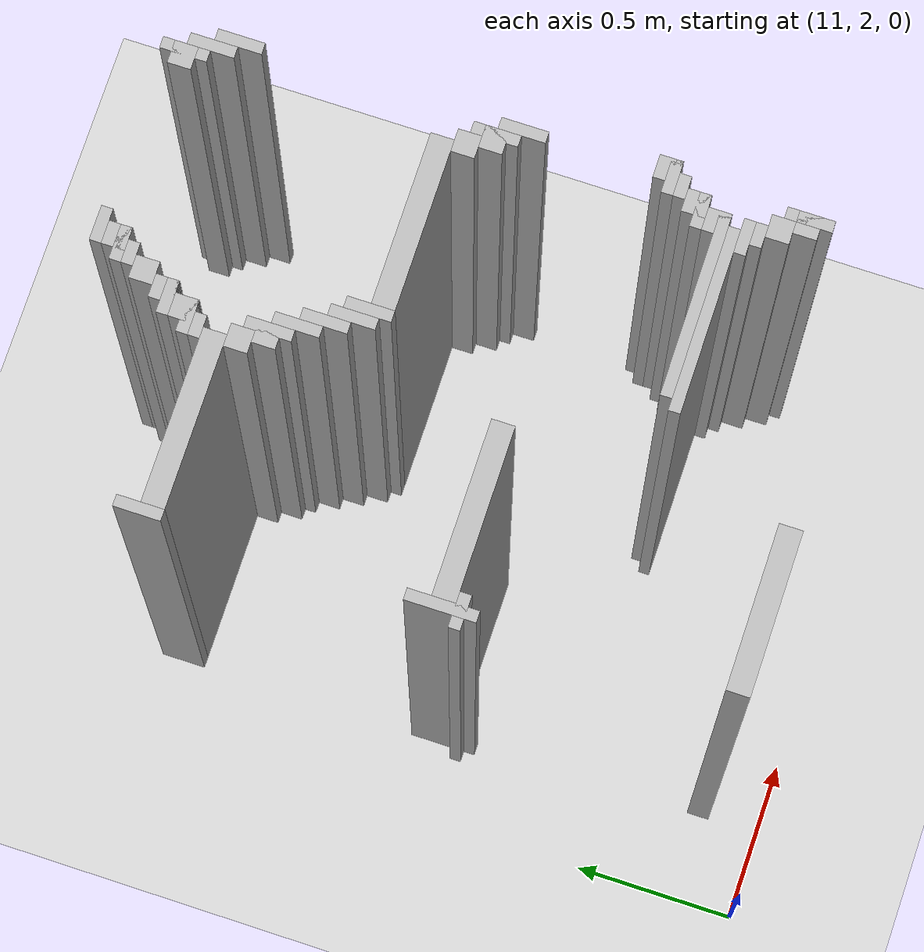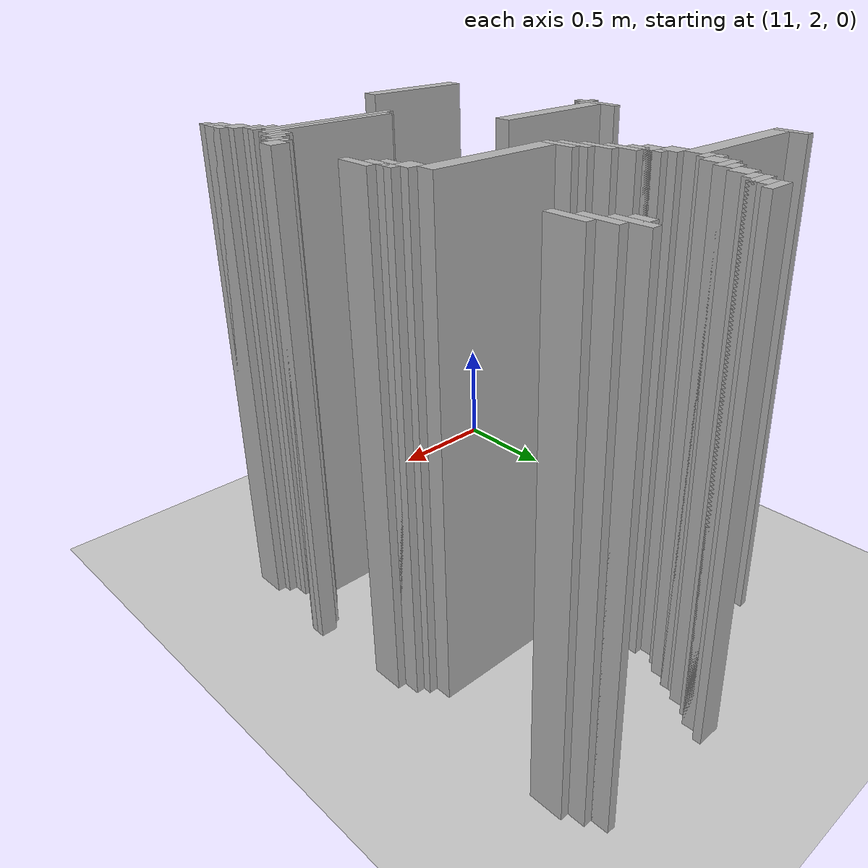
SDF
<sdf version="1.6">
 <world name="slam_world">
  <model name="ground_plane">
   <static>true</static>
   <link name="link">
    <collision name="collision">
     <geometry><plane><normal>0 0 1</normal><size>100 100</size></plane></geometry>
    </collision>
    <visual name="visual">
     <geometry><plane><normal>0 0 1</normal><size>100 100</size></plane></geometry>
     <material>
      <ambient>0.8 0.8 0.8 1</ambient>
      <diffuse>0.8 0.8 0.8 1</diffuse>
      <specular>0.8 0.8 0.8 1</specular>
     </material>
    </visual>
   </link>
  </model>
  <model name="wall_4308">
   <static>true</static>
   <pose>11.989559164733178 4.263341067285383 1.0 0 0 0</pose>
   <link name="link">
    <collision name="collision">
     <geometry><box><size>0.10440835266821345 0.03480278422273782 2.0</size></box></geometry>
    </collision>
    <visual name="visual">
     <geometry><box><size>0.10440835266821345 0.03480278422273782 2.0</size></box></geometry>
     <material><ambient>0.5 0.5 0.5 1</ambient><diffuse>0.7 0.7 0.7 1</diffuse></material>
    </visual>
   </link>
  </model>
  <model name="wall_4309">
   <static>true</static>
   <pose>12.546403712296984 4.211136890951276 1.0 0 0 0</pose>
   <link name="link">
    <collision name="collision">
     <geometry><box><size>0.03480278422273782 0.13921113689095127 2.0</size></box></geometry>
    </collision>
    <visual name="visual">
     <geometry><box><size>0.03480278422273782 0.13921113689095127 2.0</size></box></geometry>
     <material><ambient>0.5 0.5 0.5 1</ambient><diffuse>0.7 0.7 0.7 1</diffuse></material>
    </visual>
   </link>
  </model>
  <model name="wall_4323">
   <static>true</static>
   <pose>11.97215777262181 4.211136890951276 1.0 0 0 0</pose>
   <link name="link">
    <collision name="collision">
     <geometry><box><size>0.06960556844547564 0.06960556844547564 2.0</size></box></geometry>
    </collision>
    <visual name="visual">
     <geometry><box><size>0.06960556844547564 0.06960556844547564 2.0</size></box></geometry>
     <material><ambient>0.5 0.5 0.5 1</ambient><diffuse>0.7 0.7 0.7 1</diffuse></material>
    </visual>
   </link>
  </model>
  <model name="wall_4324">
   <static>true</static>
   <pose>12.529002320185615 4.211136890951276 1.0 0 0 0</pose>
   <link name="link">
    <collision name="collision">
     <geometry><box><size>0.06960556844547564 0.06960556844547564 2.0</size></box></geometry>
    </collision>
    <visual name="visual">
     <geometry><box><size>0.06960556844547564 0.06960556844547564 2.0</size></box></geometry>
     <material><ambient>0.5 0.5 0.5 1</ambient><diffuse>0.7 0.7 0.7 1</diffuse></material>
    </visual>
   </link>
  </model>
  <model name="wall_4338">
   <static>true</static>
   <pose>11.95475638051044 4.193735498839907 1.0 0 0 0</pose>
   <link name="link">
    <collision name="collision">
     <geometry><box><size>0.10440835266821345 0.03480278422273782 2.0</size></box></geometry>
    </collision>
    <visual name="visual">
     <geometry><box><size>0.10440835266821345 0.03480278422273782 2.0</size></box></geometry>
     <material><ambient>0.5 0.5 0.5 1</ambient><diffuse>0.7 0.7 0.7 1</diffuse></material>
    </visual>
   </link>
  </model>
  <model name="wall_4339">
   <static>true</static>
   <pose>12.581206496519721 4.1415313225058 1.0 0 0 0</pose>
   <link name="link">
    <collision name="collision">
     <geometry><box><size>0.03480278422273782 0.13921113689095127 2.0</size></box></geometry>
    </collision>
    <visual name="visual">
     <geometry><box><size>0.03480278422273782 0.13921113689095127 2.0</size></box></geometry>
     <material><ambient>0.5 0.5 0.5 1</ambient><diffuse>0.7 0.7 0.7 1</diffuse></material>
    </visual>
   </link>
  </model>
  <model name="wall_4348">
   <static>true</static>
   <pose>11.937354988399072 4.158932714617169 1.0 0 0 0</pose>
   <link name="link">
    <collision name="collision">
     <geometry><box><size>0.06960556844547564 0.03480278422273782 2.0</size></box></geometry>
    </collision>
    <visual name="visual">
     <geometry><box><size>0.06960556844547564 0.03480278422273782 2.0</size></box></geometry>
     <material><ambient>0.5 0.5 0.5 1</ambient><diffuse>0.7 0.7 0.7 1</diffuse></material>
    </visual>
   </link>
  </model>
  <model name="wall_4362">
   <static>true</static>
   <pose>11.902552204176333 4.106728538283062 1.0 0 0 0</pose>
   <link name="link">
    <collision name="collision">
     <geometry><box><size>0.06960556844547564 0.06960556844547564 2.0</size></box></geometry>
    </collision>
    <visual name="visual">
     <geometry><box><size>0.06960556844547564 0.06960556844547564 2.0</size></box></geometry>
     <material><ambient>0.5 0.5 0.5 1</ambient><diffuse>0.7 0.7 0.7 1</diffuse></material>
    </visual>
   </link>
  </model>
  <model name="wall_4363">
   <static>true</static>
   <pose>12.616009280742459 4.071925754060325 1.0 0 0 0</pose>
   <link name="link">
    <collision name="collision">
     <geometry><box><size>0.03480278422273782 0.13921113689095127 2.0</size></box></geometry>
    </collision>
    <visual name="visual">
     <geometry><box><size>0.03480278422273782 0.13921113689095127 2.0</size></box></geometry>
     <material><ambient>0.5 0.5 0.5 1</ambient><diffuse>0.7 0.7 0.7 1</diffuse></material>
    </visual>
   </link>
  </model>
  <model name="wall_4377">
   <static>true</static>
   <pose>11.867749419953595 4.037122969837587 1.0 0 0 0</pose>
   <link name="link">
    <collision name="collision">
     <geometry><box><size>0.06960556844547564 0.06960556844547564 2.0</size></box></geometry>
    </collision>
    <visual name="visual">
     <geometry><box><size>0.06960556844547564 0.06960556844547564 2.0</size></box></geometry>
     <material><ambient>0.5 0.5 0.5 1</ambient><diffuse>0.7 0.7 0.7 1</diffuse></material>
    </visual>
   </link>
  </model>
  <model name="wall_4392">
   <static>true</static>
   <pose>11.850348027842227 4.019721577726218 1.0 0 0 0</pose>
   <link name="link">
    <collision name="collision">
     <geometry><box><size>0.10440835266821345 0.03480278422273782 2.0</size></box></geometry>
    </collision>
    <visual name="visual">
     <geometry><box><size>0.10440835266821345 0.03480278422273782 2.0</size></box></geometry>
     <material><ambient>0.5 0.5 0.5 1</ambient><diffuse>0.7 0.7 0.7 1</diffuse></material>
    </visual>
   </link>
  </model>
  <model name="wall_4401">
   <static>true</static>
   <pose>11.832946635730858 3.967517401392111 1.0 0 0 0</pose>
   <link name="link">
    <collision name="collision">
     <geometry><box><size>0.06960556844547564 0.06960556844547564 2.0</size></box></geometry>
    </collision>
    <visual name="visual">
     <geometry><box><size>0.06960556844547564 0.06960556844547564 2.0</size></box></geometry>
     <material><ambient>0.5 0.5 0.5 1</ambient><diffuse>0.7 0.7 0.7 1</diffuse></material>
    </visual>
   </link>
  </model>
  <model name="wall_4414">
   <static>true</static>
   <pose>11.258700696055683 3.897911832946636 1.0 0 0 0</pose>
   <link name="link">
    <collision name="collision">
     <geometry><box><size>0.03480278422273782 0.13921113689095127 2.0</size></box></geometry>
    </collision>
    <visual name="visual">
     <geometry><box><size>0.03480278422273782 0.13921113689095127 2.0</size></box></geometry>
     <material><ambient>0.5 0.5 0.5 1</ambient><diffuse>0.7 0.7 0.7 1</diffuse></material>
    </visual>
   </link>
  </model>
  <model name="wall_4415">
   <static>true</static>
   <pose>11.81554524361949 3.9501160092807424 1.0 0 0 0</pose>
   <link name="link">
    <collision name="collision">
     <geometry><box><size>0.10440835266821345 0.03480278422273782 2.0</size></box></geometry>
    </collision>
    <visual name="visual">
     <geometry><box><size>0.10440835266821345 0.03480278422273782 2.0</size></box></geometry>
     <material><ambient>0.5 0.5 0.5 1</ambient><diffuse>0.7 0.7 0.7 1</diffuse></material>
    </visual>
   </link>
  </model>
  <model name="wall_4424">
   <static>true</static>
   <pose>11.79814385150812 3.9153132250580045 1.0 0 0 0</pose>
   <link name="link">
    <collision name="collision">
     <geometry><box><size>0.06960556844547564 0.03480278422273782 2.0</size></box></geometry>
    </collision>
    <visual name="visual">
     <geometry><box><size>0.06960556844547564 0.03480278422273782 2.0</size></box></geometry>
     <material><ambient>0.5 0.5 0.5 1</ambient><diffuse>0.7 0.7 0.7 1</diffuse></material>
    </visual>
   </link>
  </model>
  <model name="wall_4439">
   <static>true</static>
   <pose>11.537122969837586 3.863109048723898 1.0 0 0 0</pose>
   <link name="link">
    <collision name="collision">
     <geometry><box><size>0.5220417633410672 0.06960556844547564 2.0</size></box></geometry>
    </collision>
    <visual name="visual">
     <geometry><box><size>0.5220417633410672 0.06960556844547564 2.0</size></box></geometry>
     <material><ambient>0.5 0.5 0.5 1</ambient><diffuse>0.7 0.7 0.7 1</diffuse></material>
    </visual>
   </link>
  </model>
  <model name="wall_4456">
   <static>true</static>
   <pose>11.79814385150812 3.793503480278422 1.0 0 0 0</pose>
   <link name="link">
    <collision name="collision">
     <geometry><box><size>0.06960556844547564 0.06960556844547564 2.0</size></box></geometry>
    </collision>
    <visual name="visual">
     <geometry><box><size>0.06960556844547564 0.06960556844547564 2.0</size></box></geometry>
     <material><ambient>0.5 0.5 0.5 1</ambient><diffuse>0.7 0.7 0.7 1</diffuse></material>
    </visual>
   </link>
  </model>
  <model name="wall_4473">
   <static>true</static>
   <pose>11.850348027842227 3.7238979118329465 1.0 0 0 0</pose>
   <link name="link">
    <collision name="collision">
     <geometry><box><size>0.03480278422273782 0.13921113689095127 2.0</size></box></geometry>
    </collision>
    <visual name="visual">
     <geometry><box><size>0.03480278422273782 0.13921113689095127 2.0</size></box></geometry>
     <material><ambient>0.5 0.5 0.5 1</ambient><diffuse>0.7 0.7 0.7 1</diffuse></material>
    </visual>
   </link>
  </model>
  <model name="wall_4490">
   <static>true</static>
   <pose>11.832946635730858 3.7238979118329465 1.0 0 0 0</pose>
   <link name="link">
    <collision name="collision">
     <geometry><box><size>0.06960556844547564 0.06960556844547564 2.0</size></box></geometry>
    </collision>
    <visual name="visual">
     <geometry><box><size>0.06960556844547564 0.06960556844547564 2.0</size></box></geometry>
     <material><ambient>0.5 0.5 0.5 1</ambient><diffuse>0.7 0.7 0.7 1</diffuse></material>
    </visual>
   </link>
  </model>
  <model name="wall_4507">
   <static>true</static>
   <pose>11.885150812064964 3.6542923433874708 1.0 0 0 0</pose>
   <link name="link">
    <collision name="collision">
     <geometry><box><size>0.03480278422273782 0.13921113689095127 2.0</size></box></geometry>
    </collision>
    <visual name="visual">
     <geometry><box><size>0.03480278422273782 0.13921113689095127 2.0</size></box></geometry>
     <material><ambient>0.5 0.5 0.5 1</ambient><diffuse>0.7 0.7 0.7 1</diffuse></material>
    </visual>
   </link>
  </model>
  <model name="wall_4531">
   <static>true</static>
   <pose>11.919953596287703 3.584686774941995 1.0 0 0 0</pose>
   <link name="link">
    <collision name="collision">
     <geometry><box><size>0.03480278422273782 0.13921113689095127 2.0</size></box></geometry>
    </collision>
    <visual name="visual">
     <geometry><box><size>0.03480278422273782 0.13921113689095127 2.0</size></box></geometry>
     <material><ambient>0.5 0.5 0.5 1</ambient><diffuse>0.7 0.7 0.7 1</diffuse></material>
    </visual>
   </link>
  </model>
  <model name="wall_4555">
   <static>true</static>
   <pose>11.95475638051044 3.51508120649652 1.0 0 0 0</pose>
   <link name="link">
    <collision name="collision">
     <geometry><box><size>0.03480278422273782 0.13921113689095127 2.0</size></box></geometry>
    </collision>
    <visual name="visual">
     <geometry><box><size>0.03480278422273782 0.13921113689095127 2.0</size></box></geometry>
     <material><ambient>0.5 0.5 0.5 1</ambient><diffuse>0.7 0.7 0.7 1</diffuse></material>
    </visual>
   </link>
  </model>
  <model name="wall_4572">
   <static>true</static>
   <pose>11.989559164733178 3.480278422273782 1.0 0 0 0</pose>
   <link name="link">
    <collision name="collision">
     <geometry><box><size>0.03480278422273782 0.13921113689095127 2.0</size></box></geometry>
    </collision>
    <visual name="visual">
     <geometry><box><size>0.03480278422273782 0.13921113689095127 2.0</size></box></geometry>
     <material><ambient>0.5 0.5 0.5 1</ambient><diffuse>0.7 0.7 0.7 1</diffuse></material>
    </visual>
   </link>
  </model>
  <model name="wall_4595">
   <static>true</static>
   <pose>12.267981438515081 3.445475638051044 1.0 0 0 0</pose>
   <link name="link">
    <collision name="collision">
     <geometry><box><size>0.5220417633410672 0.06960556844547564 2.0</size></box></geometry>
    </collision>
    <visual name="visual">
     <geometry><box><size>0.5220417633410672 0.06960556844547564 2.0</size></box></geometry>
     <material><ambient>0.5 0.5 0.5 1</ambient><diffuse>0.7 0.7 0.7 1</diffuse></material>
    </visual>
   </link>
  </model>
  <model name="wall_4615">
   <static>true</static>
   <pose>12.529002320185615 3.3758700696055683 1.0 0 0 0</pose>
   <link name="link">
    <collision name="collision">
     <geometry><box><size>0.06960556844547564 0.06960556844547564 2.0</size></box></geometry>
    </collision>
    <visual name="visual">
     <geometry><box><size>0.06960556844547564 0.06960556844547564 2.0</size></box></geometry>
     <material><ambient>0.5 0.5 0.5 1</ambient><diffuse>0.7 0.7 0.7 1</diffuse></material>
    </visual>
   </link>
  </model>
  <model name="wall_4628">
   <static>true</static>
   <pose>12.581206496519721 3.3062645011600926 1.0 0 0 0</pose>
   <link name="link">
    <collision name="collision">
     <geometry><box><size>0.03480278422273782 0.13921113689095127 2.0</size></box></geometry>
    </collision>
    <visual name="visual">
     <geometry><box><size>0.03480278422273782 0.13921113689095127 2.0</size></box></geometry>
     <material><ambient>0.5 0.5 0.5 1</ambient><diffuse>0.7 0.7 0.7 1</diffuse></material>
    </visual>
   </link>
  </model>
  <model name="wall_4641">
   <static>true</static>
   <pose>12.563805104408353 3.3062645011600926 1.0 0 0 0</pose>
   <link name="link">
    <collision name="collision">
     <geometry><box><size>0.06960556844547564 0.06960556844547564 2.0</size></box></geometry>
    </collision>
    <visual name="visual">
     <geometry><box><size>0.06960556844547564 0.06960556844547564 2.0</size></box></geometry>
     <material><ambient>0.5 0.5 0.5 1</ambient><diffuse>0.7 0.7 0.7 1</diffuse></material>
    </visual>
   </link>
  </model>
  <model name="wall_4654">
   <static>true</static>
   <pose>12.616009280742459 3.236658932714617 1.0 0 0 0</pose>
   <link name="link">
    <collision name="collision">
     <geometry><box><size>0.03480278422273782 0.13921113689095127 2.0</size></box></geometry>
    </collision>
    <visual name="visual">
     <geometry><box><size>0.03480278422273782 0.13921113689095127 2.0</size></box></geometry>
     <material><ambient>0.5 0.5 0.5 1</ambient><diffuse>0.7 0.7 0.7 1</diffuse></material>
    </visual>
   </link>
  </model>
  <model name="wall_4698">
   <static>true</static>
   <pose>11.258700696055683 3.02784222737819 1.0 0 0 0</pose>
   <link name="link">
    <collision name="collision">
     <geometry><box><size>0.03480278422273782 0.2088167053364269 2.0</size></box></geometry>
    </collision>
    <visual name="visual">
     <geometry><box><size>0.03480278422273782 0.2088167053364269 2.0</size></box></geometry>
     <material><ambient>0.5 0.5 0.5 1</ambient><diffuse>0.7 0.7 0.7 1</diffuse></material>
    </visual>
   </link>
  </model>
  <model name="wall_4721">
   <static>true</static>
   <pose>11.537122969837586 3.02784222737819 1.0 0 0 0</pose>
   <link name="link">
    <collision name="collision">
     <geometry><box><size>0.5220417633410672 0.06960556844547564 2.0</size></box></geometry>
    </collision>
    <visual name="visual">
     <geometry><box><size>0.5220417633410672 0.06960556844547564 2.0</size></box></geometry>
     <material><ambient>0.5 0.5 0.5 1</ambient><diffuse>0.7 0.7 0.7 1</diffuse></material>
    </visual>
   </link>
  </model>
  <model name="wall_4743">
   <static>true</static>
   <pose>11.258700696055683 2.975638051044083 1.0 0 0 0</pose>
   <link name="link">
    <collision name="collision">
     <geometry><box><size>0.10440835266821345 0.03480278422273782 2.0</size></box></geometry>
    </collision>
    <visual name="visual">
     <geometry><box><size>0.10440835266821345 0.03480278422273782 2.0</size></box></geometry>
     <material><ambient>0.5 0.5 0.5 1</ambient><diffuse>0.7 0.7 0.7 1</diffuse></material>
    </visual>
   </link>
  </model>
  <model name="wall_4795">
   <static>true</static>
   <pose>12.633410672853827 2.819025522041763 1.0 0 0 0</pose>
   <link name="link">
    <collision name="collision">
     <geometry><box><size>0.06960556844547564 0.06960556844547564 2.0</size></box></geometry>
    </collision>
    <visual name="visual">
     <geometry><box><size>0.06960556844547564 0.06960556844547564 2.0</size></box></geometry>
     <material><ambient>0.5 0.5 0.5 1</ambient><diffuse>0.7 0.7 0.7 1</diffuse></material>
    </visual>
   </link>
  </model>
  <model name="wall_4811">
   <static>true</static>
   <pose>12.616009280742459 2.8016241299303943 1.0 0 0 0</pose>
   <link name="link">
    <collision name="collision">
     <geometry><box><size>0.10440835266821345 0.03480278422273782 2.0</size></box></geometry>
    </collision>
    <visual name="visual">
     <geometry><box><size>0.10440835266821345 0.03480278422273782 2.0</size></box></geometry>
     <material><ambient>0.5 0.5 0.5 1</ambient><diffuse>0.7 0.7 0.7 1</diffuse></material>
    </visual>
   </link>
  </model>
  <model name="wall_4820">
   <static>true</static>
   <pose>12.59860788863109 2.7668213457076565 1.0 0 0 0</pose>
   <link name="link">
    <collision name="collision">
     <geometry><box><size>0.06960556844547564 0.03480278422273782 2.0</size></box></geometry>
    </collision>
    <visual name="visual">
     <geometry><box><size>0.06960556844547564 0.03480278422273782 2.0</size></box></geometry>
     <material><ambient>0.5 0.5 0.5 1</ambient><diffuse>0.7 0.7 0.7 1</diffuse></material>
    </visual>
   </link>
  </model>
  <model name="wall_4835">
   <static>true</static>
   <pose>12.563805104408353 2.71461716937355 1.0 0 0 0</pose>
   <link name="link">
    <collision name="collision">
     <geometry><box><size>0.06960556844547564 0.06960556844547564 2.0</size></box></geometry>
    </collision>
    <visual name="visual">
     <geometry><box><size>0.06960556844547564 0.06960556844547564 2.0</size></box></geometry>
     <material><ambient>0.5 0.5 0.5 1</ambient><diffuse>0.7 0.7 0.7 1</diffuse></material>
    </visual>
   </link>
  </model>
  <model name="wall_4851">
   <static>true</static>
   <pose>12.546403712296984 2.6972157772621808 1.0 0 0 0</pose>
   <link name="link">
    <collision name="collision">
     <geometry><box><size>0.10440835266821345 0.03480278422273782 2.0</size></box></geometry>
    </collision>
    <visual name="visual">
     <geometry><box><size>0.10440835266821345 0.03480278422273782 2.0</size></box></geometry>
     <material><ambient>0.5 0.5 0.5 1</ambient><diffuse>0.7 0.7 0.7 1</diffuse></material>
    </visual>
   </link>
  </model>
  <model name="wall_4860">
   <static>true</static>
   <pose>12.529002320185615 2.645011600928074 1.0 0 0 0</pose>
   <link name="link">
    <collision name="collision">
     <geometry><box><size>0.06960556844547564 0.06960556844547564 2.0</size></box></geometry>
    </collision>
    <visual name="visual">
     <geometry><box><size>0.06960556844547564 0.06960556844547564 2.0</size></box></geometry>
     <material><ambient>0.5 0.5 0.5 1</ambient><diffuse>0.7 0.7 0.7 1</diffuse></material>
    </visual>
   </link>
  </model>
  <model name="wall_4874">
   <static>true</static>
   <pose>12.28538283062645 2.627610208816705 1.0 0 0 0</pose>
   <link name="link">
    <collision name="collision">
     <geometry><box><size>0.5568445475638051 0.03480278422273782 2.0</size></box></geometry>
    </collision>
    <visual name="visual">
     <geometry><box><size>0.5568445475638051 0.03480278422273782 2.0</size></box></geometry>
     <material><ambient>0.5 0.5 0.5 1</ambient><diffuse>0.7 0.7 0.7 1</diffuse></material>
    </visual>
   </link>
  </model>
  <model name="wall_4885">
   <static>true</static>
   <pose>12.250580046403712 2.5928074245939676 1.0 0 0 0</pose>
   <link name="link">
    <collision name="collision">
     <geometry><box><size>0.5568445475638051 0.03480278422273782 2.0</size></box></geometry>
    </collision>
    <visual name="visual">
     <geometry><box><size>0.5568445475638051 0.03480278422273782 2.0</size></box></geometry>
     <material><ambient>0.5 0.5 0.5 1</ambient><diffuse>0.7 0.7 0.7 1</diffuse></material>
    </visual>
   </link>
  </model>
  <model name="wall_4897">
   <static>true</static>
   <pose>12.511600928074245 2.5580046403712298 1.0 0 0 0</pose>
   <link name="link">
    <collision name="collision">
     <geometry><box><size>0.10440835266821345 0.03480278422273782 2.0</size></box></geometry>
    </collision>
    <visual name="visual">
     <geometry><box><size>0.10440835266821345 0.03480278422273782 2.0</size></box></geometry>
     <material><ambient>0.5 0.5 0.5 1</ambient><diffuse>0.7 0.7 0.7 1</diffuse></material>
    </visual>
   </link>
  </model>
  <model name="wall_4905">
   <static>true</static>
   <pose>12.529002320185615 2.523201856148492 1.0 0 0 0</pose>
   <link name="link">
    <collision name="collision">
     <geometry><box><size>0.06960556844547564 0.03480278422273782 2.0</size></box></geometry>
    </collision>
    <visual name="visual">
     <geometry><box><size>0.06960556844547564 0.03480278422273782 2.0</size></box></geometry>
     <material><ambient>0.5 0.5 0.5 1</ambient><diffuse>0.7 0.7 0.7 1</diffuse></material>
    </visual>
   </link>
  </model>
  <model name="wall_4917">
   <static>true</static>
   <pose>12.563805104408353 2.470997679814385 1.0 0 0 0</pose>
   <link name="link">
    <collision name="collision">
     <geometry><box><size>0.06960556844547564 0.06960556844547564 2.0</size></box></geometry>
    </collision>
    <visual name="visual">
     <geometry><box><size>0.06960556844547564 0.06960556844547564 2.0</size></box></geometry>
     <material><ambient>0.5 0.5 0.5 1</ambient><diffuse>0.7 0.7 0.7 1</diffuse></material>
    </visual>
   </link>
  </model>
  <model name="wall_4930">
   <static>true</static>
   <pose>12.616009280742459 2.4013921113689096 1.0 0 0 0</pose>
   <link name="link">
    <collision name="collision">
     <geometry><box><size>0.03480278422273782 0.13921113689095127 2.0</size></box></geometry>
    </collision>
    <visual name="visual">
     <geometry><box><size>0.03480278422273782 0.13921113689095127 2.0</size></box></geometry>
     <material><ambient>0.5 0.5 0.5 1</ambient><diffuse>0.7 0.7 0.7 1</diffuse></material>
    </visual>
   </link>
  </model>
  <model name="wall_4942">
   <static>true</static>
   <pose>12.59860788863109 2.4013921113689096 1.0 0 0 0</pose>
   <link name="link">
    <collision name="collision">
     <geometry><box><size>0.06960556844547564 0.06960556844547564 2.0</size></box></geometry>
    </collision>
    <visual name="visual">
     <geometry><box><size>0.06960556844547564 0.06960556844547564 2.0</size></box></geometry>
     <material><ambient>0.5 0.5 0.5 1</ambient><diffuse>0.7 0.7 0.7 1</diffuse></material>
    </visual>
   </link>
  </model>
  <model name="wall_5001">
   <static>true</static>
   <pose>11.519721577726218 2.1925754060324825 1.0 0 0 0</pose>
   <link name="link">
    <collision name="collision">
     <geometry><box><size>0.4872389791183295 0.06960556844547564 2.0</size></box></geometry>
    </collision>
    <visual name="visual">
     <geometry><box><size>0.4872389791183295 0.06960556844547564 2.0</size></box></geometry>
     <material><ambient>0.5 0.5 0.5 1</ambient><diffuse>0.7 0.7 0.7 1</diffuse></material>
    </visual>
   </link>
  </model>
 </world>
</sdf>
